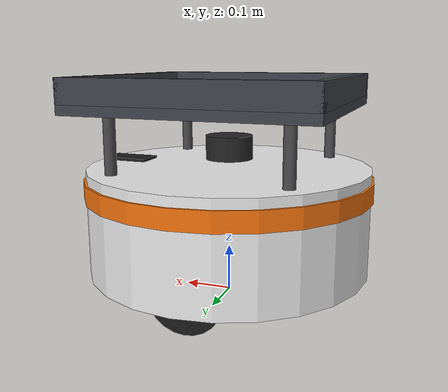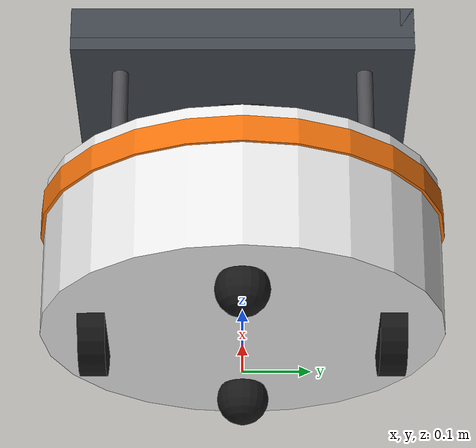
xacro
<?xml version="1.0"?>
<robot name="amr" xmlns:xacro="http://www.ros.org/wiki/xacro">

  <xacro:arg name="name"  default="amr1"/>
  <xacro:arg name="color" default="0.95 0.45 0.05 1"/>
  <xacro:property name="ns" value="$(arg name)"/>

  <xacro:property name="body_r"  value="0.3"/>
  <xacro:property name="body_z0" value="0.06"/>   <!-- day than -->
  <xacro:property name="body_z1" value="0.28"/>   <!-- nap than -->
  <xacro:property name="wheel_r" value="0.08"/>
  <xacro:property name="wheel_w" value="0.04"/>
  <xacro:property name="wheel_y" value="0.22"/>   <!-- 1/2 khoang cach 2 banh -->
  <xacro:property name="tray_z"  value="0.41"/>

  <xacro:macro name="cyl_inertia" params="m r h">
    <inertial>
      <mass value="${m}"/>
      <inertia ixx="${m*(3*r*r + h*h)/12}" ixy="0" ixz="0"
               iyy="${m*(3*r*r + h*h)/12}" iyz="0" izz="${m*r*r/2}"/>
    </inertial>
  </xacro:macro>

  <!-- ===== Than (base_link o mat dat, giua 2 banh) ===== -->
  <link name="base_link">
    <xacro:cyl_inertia m="20.0" r="${body_r}" h="${body_z1 - body_z0}"/>
    <!-- than trang -->
    <visual>
      <origin xyz="0 0 ${(body_z0 + body_z1)/2}"/>
      <geometry><cylinder radius="${body_r}" length="${body_z1 - body_z0}"/></geometry>
      <material name="body"><color rgba="0.92 0.92 0.92 1"/></material>
    </visual>
    <!-- vong mau nhan dien robot -->
    <visual>
      <origin xyz="0 0 ${body_z1 - 0.04}"/>
      <geometry><cylinder radius="${body_r + 0.005}" length="0.04"/></geometry>
      <material name="${ns}_band"><color rgba="$(arg color)"/></material>
    </visual>
    <!-- mui ten chi huong phia truoc -->
    <visual>
      <origin xyz="${body_r - 0.06} 0 ${body_z1 + 0.003}"/>
      <geometry><box size="0.1 0.06 0.006"/></geometry>
      <material name="front"><color rgba="0.1 0.1 0.1 1"/></material>
    </visual>
    <collision>
      <origin xyz="0 0 ${(body_z0 + body_z1)/2}"/>
      <geometry><cylinder radius="${body_r}" length="${body_z1 - body_z0}"/></geometry>
    </collision>

    <!-- 4 tru + khay cho hang co vien -->
    <xacro:macro name="post" params="x y">
      <visual>
        <origin xyz="${x} ${y} ${(body_z1 + tray_z)/2}"/>
        <geometry><cylinder radius="0.012" length="${tray_z - body_z1}"/></geometry>
        <material name="post"><color rgba="0.3 0.3 0.32 1"/></material>
      </visual>
    </xacro:macro>
    <xacro:post x=" 0.18" y=" 0.18"/>
    <xacro:post x=" 0.18" y="-0.18"/>
    <xacro:post x="-0.18" y=" 0.18"/>
    <xacro:post x="-0.18" y="-0.18"/>
    <xacro:macro name="tray_part" params="x y z sx sy sz">
      <visual>
        <origin xyz="${x} ${y} ${z}"/>
        <geometry><box size="${sx} ${sy} ${sz}"/></geometry>
        <material name="tray"><color rgba="0.25 0.27 0.30 1"/></material>
      </visual>
      <collision>
        <origin xyz="${x} ${y} ${z}"/>
        <geometry><box size="${sx} ${sy} ${sz}"/></geometry>
      </collision>
    </xacro:macro>
    <xacro:tray_part x="0" y="0" z="${tray_z}" sx="0.5" sy="0.5" sz="0.02"/>
    <xacro:tray_part x=" 0.24" y="0" z="${tray_z + 0.035}" sx="0.02" sy="0.5" sz="0.05"/>
    <xacro:tray_part x="-0.24" y="0" z="${tray_z + 0.035}" sx="0.02" sy="0.5" sz="0.05"/>
    <xacro:tray_part x="0" y=" 0.24" z="${tray_z + 0.035}" sx="0.5" sy="0.02" sz="0.05"/>
    <xacro:tray_part x="0" y="-0.24" z="${tray_z + 0.035}" sx="0.5" sy="0.02" sz="0.05"/>
  </link>

  <gazebo reference="base_link">
    <mu1>0.9</mu1>
    <mu2>0.9</mu2>
  </gazebo>

  <!-- ===== 2 banh chu dong ===== -->
  <xacro:macro name="wheel" params="side y">
    <link name="${side}_wheel">
      <xacro:cyl_inertia m="1.0" r="${wheel_r}" h="${wheel_w}"/>
      <visual>
        <origin rpy="${pi/2} 0 0"/>
        <geometry><cylinder radius="${wheel_r}" length="${wheel_w}"/></geometry>
        <material name="tyre"><color rgba="0.1 0.1 0.1 1"/></material>
      </visual>
      <collision>
        <origin rpy="${pi/2} 0 0"/>
        <geometry><cylinder radius="${wheel_r}" length="${wheel_w}"/></geometry>
      </collision>
    </link>
    <joint name="${side}_wheel_joint" type="continuous">
      <parent link="base_link"/>
      <child link="${side}_wheel"/>
      <origin xyz="0 ${y} ${wheel_r}"/>
      <axis xyz="0 1 0"/>
    </joint>
    <gazebo reference="${side}_wheel">
      <mu1>1.0</mu1>
      <mu2>1.0</mu2>
    </gazebo>
  </xacro:macro>
  <xacro:wheel side="left"  y="${ wheel_y}"/>
  <xacro:wheel side="right" y="${-wheel_y}"/>

  <!-- ===== 2 banh tu do (truoc / sau), khong ma sat ===== -->
  <xacro:macro name="caster" params="name x">
    <link name="${name}">
      <inertial>
        <mass value="0.2"/>
        <inertia ixx="0.0001" ixy="0" ixz="0" iyy="0.0001" iyz="0" izz="0.0001"/>
      </inertial>
      <visual>
        <geometry><sphere radius="0.04"/></geometry>
        <material name="tyre"><color rgba="0.1 0.1 0.1 1"/></material>
      </visual>
      <collision>
        <geometry><sphere radius="0.04"/></geometry>
      </collision>
    </link>
    <joint name="${name}_joint" type="fixed">
      <parent link="base_link"/>
      <child link="${name}"/>
      <origin xyz="${x} 0 0.04"/>
    </joint>
    <gazebo reference="${name}">
      <mu1>0.0</mu1>
      <mu2>0.0</mu2>
    </gazebo>
  </xacro:macro>
  <xacro:caster name="caster_front" x=" 0.2"/>
  <xacro:caster name="caster_back"  x="-0.2"/>

  <!-- ===== Lidar 360 do ===== -->
  <link name="lidar_link">
    <inertial>
      <mass value="0.1"/>
      <inertia ixx="0.0001" ixy="0" ixz="0" iyy="0.0001" iyz="0" izz="0.0001"/>
    </inertial>
    <visual>
      <geometry><cylinder radius="0.05" length="0.05"/></geometry>
      <material name="lidar"><color rgba="0.15 0.15 0.15 1"/></material>
    </visual>
  </link>
  <joint name="lidar_joint" type="fixed">
    <parent link="base_link"/>
    <child link="lidar_link"/>
    <origin xyz="0 0 0.32"/>
  </joint>

  <gazebo reference="lidar_link">
    <sensor name="lidar" type="gpu_lidar">
      <topic>/model/${ns}/scan</topic>
      <gz_frame_id>lidar_link</gz_frame_id>
      <update_rate>10</update_rate>
      <always_on>1</always_on>
      <visualize>false</visualize>
      <lidar>
        <scan>
          <horizontal>
            <samples>360</samples>
            <resolution>1</resolution>
            <min_angle>-3.14159</min_angle>
            <max_angle>3.14159</max_angle>
          </horizontal>
        </scan>
        <range>
          <min>0.3</min>
          <max>12.0</max>
          <resolution>0.01</resolution>
        </range>
        <noise>
          <type>gaussian</type>
          <mean>0.0</mean>
          <stddev>0.01</stddev>
        </noise>
      </lidar>
    </sensor>
  </gazebo>

  <!-- ===== Plugin Gazebo ===== -->
  <gazebo>
    <plugin filename="gz-sim-diff-drive-system" name="gz::sim::systems::DiffDrive">
      <left_joint>left_wheel_joint</left_joint>
      <right_joint>right_wheel_joint</right_joint>
      <wheel_separation>${2*wheel_y}</wheel_separation>
      <wheel_radius>${wheel_r}</wheel_radius>
      <max_linear_acceleration>1.0</max_linear_acceleration>
      <min_linear_acceleration>-1.0</min_linear_acceleration>
      <max_angular_acceleration>2.0</max_angular_acceleration>
      <min_angular_acceleration>-2.0</min_angular_acceleration>
      <topic>/model/${ns}/cmd_vel</topic>
      <odom_topic>/model/${ns}/odometry</odom_topic>
      <tf_topic>/model/${ns}/tf</tf_topic>
      <frame_id>odom</frame_id>
      <child_frame_id>base_link</child_frame_id>
      <odom_publish_frequency>30</odom_publish_frequency>
    </plugin>
    <plugin filename="gz-sim-joint-state-publisher-system" name="gz::sim::systems::JointStatePublisher">
      <topic>/model/${ns}/joint_states</topic>
    </plugin>
  </gazebo>

</robot>
